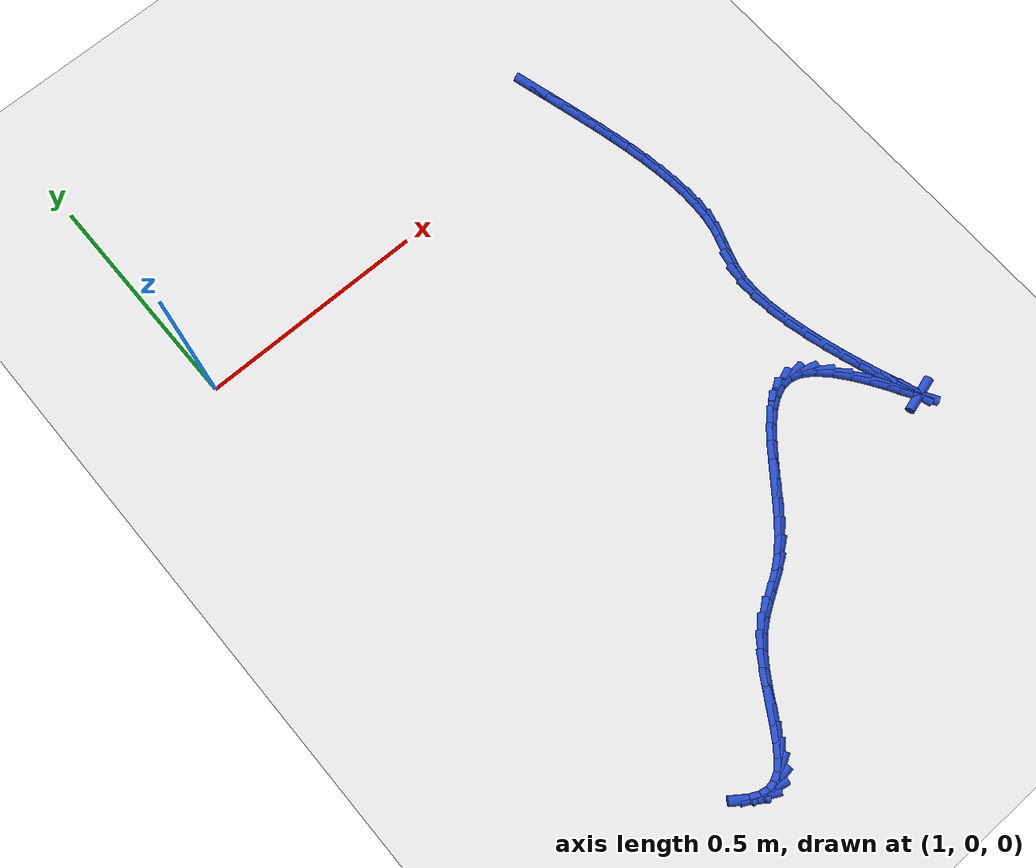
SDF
<sdf version="1.6">
 <world name="default">
  <model name="ground_plane">
   <static>1</static>
   <link name="link">
    <collision name="collision">
     <geometry><plane><normal>0 0 1</normal><size>100 100</size></plane></geometry>
     <surface><friction><ode><mu>100</mu><mu2>50</mu2></ode></friction></surface>
    </collision>
    <visual name="visual">
     <cast_shadows>0</cast_shadows>
     <geometry><plane><normal>0 0 1</normal><size>100 100</size></plane></geometry>
     <material>
      <script><uri>file://media/materials/scripts/gazebo.material</uri><name>Gazebo/WhiteGlow</name></script>
     </material>
    </visual>
   </link>
  </model>
  <model name="line">
   <link name="link_142">
    <pose>1.9295920135745042 0.09901748482487631 0.01 0 1.57 -1.3095981386716005</pose>
    <collision name="collision">
     <geometry><cylinder><radius>0.01</radius><length>0.08</length></cylinder></geometry>
    </collision>
    <visual name="visual">
     <material>
      <script><name>Gazebo/Blue</name><uri>file://media/materials/scripts/gazebo.material</uri></script>
     </material>
     <geometry><cylinder><radius>0.01</radius><length>0.08</length></cylinder></geometry>
    </visual>
   </link>
   <link name="link_143">
    <pose>1.940226286086522 0.05923418407613597 0.01 0 1.57 -1.3081289941124583</pose>
    <collision name="collision">
     <geometry><cylinder><radius>0.01</radius><length>0.08</length></cylinder></geometry>
    </collision>
    <visual name="visual">
     <material>
      <script><name>Gazebo/Blue</name><uri>file://media/materials/scripts/gazebo.material</uri></script>
     </material>
     <geometry><cylinder><radius>0.01</radius><length>0.08</length></cylinder></geometry>
    </visual>
   </link>
   <link name="link_144">
    <pose>1.951056429277409 0.018955411018796844 0.01 0 1.57 -1.3117670248668185</pose>
    <collision name="collision">
     <geometry><cylinder><radius>0.01</radius><length>0.08</length></cylinder></geometry>
    </collision>
    <visual name="visual">
     <material>
      <script><name>Gazebo/Blue</name><uri>file://media/materials/scripts/gazebo.material</uri></script>
     </material>
     <geometry><cylinder><radius>0.01</radius><length>0.08</length></cylinder></geometry>
    </visual>
   </link>
   <link name="link_145">
    <pose>1.961804301551323 -0.021605288677224554 0.01 0 1.57 -1.320492449476029</pose>
    <collision name="collision">
     <geometry><cylinder><radius>0.01</radius><length>0.08</length></cylinder></geometry>
    </collision>
    <visual name="visual">
     <material>
      <script><name>Gazebo/Blue</name><uri>file://media/materials/scripts/gazebo.material</uri></script>
     </material>
     <geometry><cylinder><radius>0.01</radius><length>0.08</length></cylinder></geometry>
    </visual>
   </link>
   <link name="link_146">
    <pose>1.9721917613124198 -0.062234369342007184 0.01 0 1.57 -1.3344862125033923</pose>
    <collision name="collision">
     <geometry><cylinder><radius>0.01</radius><length>0.08</length></cylinder></geometry>
    </collision>
    <visual name="visual">
     <material>
      <script><name>Gazebo/Blue</name><uri>file://media/materials/scripts/gazebo.material</uri></script>
     </material>
     <geometry><cylinder><radius>0.01</radius><length>0.08</length></cylinder></geometry>
    </visual>
   </link>
   <link name="link_147">
    <pose>1.9819406669648572 -0.10271828530563447 0.01 0 1.57 -1.3541351374126227</pose>
    <collision name="collision">
     <geometry><cylinder><radius>0.01</radius><length>0.08</length></cylinder></geometry>
    </collision>
    <visual name="visual">
     <material>
      <script><name>Gazebo/Blue</name><uri>file://media/materials/scripts/gazebo.material</uri></script>
     </material>
     <geometry><cylinder><radius>0.01</radius><length>0.08</length></cylinder></geometry>
    </visual>
   </link>
   <link name="link_148">
    <pose>1.9907728769127908 -0.14284349089818532 0.01 0 1.57 -1.380051458619584</pose>
    <collision name="collision">
     <geometry><cylinder><radius>0.01</radius><length>0.08</length></cylinder></geometry>
    </collision>
    <visual name="visual">
     <material>
      <script><name>Gazebo/Blue</name><uri>file://media/materials/scripts/gazebo.material</uri></script>
     </material>
     <geometry><cylinder><radius>0.01</radius><length>0.08</length></cylinder></geometry>
    </visual>
   </link>
   <link name="link_149">
    <pose>1.9984102495603788 -0.18239644044974335 0.01 0 1.57 -1.4131057579972974</pose>
    <collision name="collision">
     <geometry><cylinder><radius>0.01</radius><length>0.08</length></cylinder></geometry>
    </collision>
    <visual name="visual">
     <material>
      <script><name>Gazebo/Blue</name><uri>file://media/materials/scripts/gazebo.material</uri></script>
     </material>
     <geometry><cylinder><radius>0.01</radius><length>0.08</length></cylinder></geometry>
    </visual>
   </link>
   <link name="link_150">
    <pose>2.004574643311777 -0.22116358829038735 0.01 0 1.57 -1.4544710693049552</pose>
    <collision name="collision">
     <geometry><cylinder><radius>0.01</radius><length>0.08</length></cylinder></geometry>
    </collision>
    <visual name="visual">
     <material>
      <script><name>Gazebo/Blue</name><uri>file://media/materials/scripts/gazebo.material</uri></script>
     </material>
     <geometry><cylinder><radius>0.01</radius><length>0.08</length></cylinder></geometry>
    </visual>
   </link>
   <link name="link_151">
    <pose>2.008987916571143 -0.2589313887501997 0.01 0 1.57 -1.50567128683434</pose>
    <collision name="collision">
     <geometry><cylinder><radius>0.01</radius><length>0.08</length></cylinder></geometry>
    </collision>
    <visual name="visual">
     <material>
      <script><name>Gazebo/Blue</name><uri>file://media/materials/scripts/gazebo.material</uri></script>
     </material>
     <geometry><cylinder><radius>0.01</radius><length>0.08</length></cylinder></geometry>
    </visual>
   </link>
   <link name="link_152">
    <pose>2.011371927742633 -0.2954862961592627 0.01 0 1.57 -1.5686155495168408</pose>
    <collision name="collision">
     <geometry><cylinder><radius>0.01</radius><length>0.08</length></cylinder></geometry>
    </collision>
    <visual name="visual">
     <material>
      <script><name>Gazebo/Blue</name><uri>file://media/materials/scripts/gazebo.material</uri></script>
     </material>
     <geometry><cylinder><radius>0.01</radius><length>0.08</length></cylinder></geometry>
    </visual>
   </link>
   <link name="link_153">
    <pose>2.0114485352304046 -0.33061476484765545 0.01 0 1.57 1.496016609684038</pose>
    <collision name="collision">
     <geometry><cylinder><radius>0.01</radius><length>0.08</length></cylinder></geometry>
    </collision>
    <visual name="visual">
     <material>
      <script><name>Gazebo/Blue</name><uri>file://media/materials/scripts/gazebo.material</uri></script>
     </material>
     <geometry><cylinder><radius>0.01</radius><length>0.08</length></cylinder></geometry>
    </visual>
   </link>
   <link name="link_154">
    <pose>2.0089395974386135 -0.36410324914546105 0.01 0 1.57 1.4025695438643557</pose>
    <collision name="collision">
     <geometry><cylinder><radius>0.01</radius><length>0.08</length></cylinder></geometry>
    </collision>
    <visual name="visual">
     <material>
      <script><name>Gazebo/Blue</name><uri>file://media/materials/scripts/gazebo.material</uri></script>
     </material>
     <geometry><cylinder><radius>0.01</radius><length>0.08</length></cylinder></geometry>
    </visual>
   </link>
   <link name="link_155">
    <pose>2.0035669727714174 -0.39573820338275884 0.01 0 1.57 1.293647670728281</pose>
    <collision name="collision">
     <geometry><cylinder><radius>0.01</radius><length>0.08</length></cylinder></geometry>
    </collision>
    <visual name="visual">
     <material>
      <script><name>Gazebo/Blue</name><uri>file://media/materials/scripts/gazebo.material</uri></script>
     </material>
     <geometry><cylinder><radius>0.01</radius><length>0.08</length></cylinder></geometry>
    </visual>
   </link>
   <link name="link_156">
    <pose>1.9951367212604938 -0.4253731717471019 0.01 0 1.57 1.2268577896596005</pose>
    <collision name="collision">
     <geometry><cylinder><radius>0.01</radius><length>0.08</length></cylinder></geometry>
    </collision>
    <visual name="visual">
     <material>
      <script><name>Gazebo/Blue</name><uri>file://media/materials/scripts/gazebo.material</uri></script>
     </material>
     <geometry><cylinder><radius>0.01</radius><length>0.08</length></cylinder></geometry>
    </visual>
   </link>
   <link name="link_157">
    <pose>1.9848833703449036 -0.4539998673377747 0.01 0 1.57 1.2552804261213353</pose>
    <collision name="collision">
     <geometry><cylinder><radius>0.01</radius><length>0.08</length></cylinder></geometry>
    </collision>
    <visual name="visual">
     <material>
      <script><name>Gazebo/Blue</name><uri>file://media/materials/scripts/gazebo.material</uri></script>
     </material>
     <geometry><cylinder><radius>0.01</radius><length>0.08</length></cylinder></geometry>
    </visual>
   </link>
   <link name="link_158">
    <pose>1.9752342220975956 -0.4835603777603233 0.01 0 1.57 1.3707948132588155</pose>
    <collision name="collision">
     <geometry><cylinder><radius>0.01</radius><length>0.08</length></cylinder></geometry>
    </collision>
    <visual name="visual">
     <material>
      <script><name>Gazebo/Blue</name><uri>file://media/materials/scripts/gazebo.material</uri></script>
     </material>
     <geometry><cylinder><radius>0.01</radius><length>0.08</length></cylinder></geometry>
    </visual>
   </link>
   <link name="link_159">
    <pose>1.9686530898343375 -0.5160258701070609 0.01 0 1.57 1.5249932555579062</pose>
    <collision name="collision">
     <geometry><cylinder><radius>0.01</radius><length>0.08</length></cylinder></geometry>
    </collision>
    <visual name="visual">
     <material>
      <script><name>Gazebo/Blue</name><uri>file://media/materials/scripts/gazebo.material</uri></script>
     </material>
     <geometry><cylinder><radius>0.01</radius><length>0.08</length></cylinder></geometry>
    </visual>
   </link>
   <link name="link_160">
    <pose>1.966969538473541 -0.5527564611182589 0.01 0 1.57 -1.4997960448295549</pose>
    <collision name="collision">
     <geometry><cylinder><radius>0.01</radius><length>0.08</length></cylinder></geometry>
    </collision>
    <visual name="visual">
     <material>
      <script><name>Gazebo/Blue</name><uri>file://media/materials/scripts/gazebo.material</uri></script>
     </material>
     <geometry><cylinder><radius>0.01</radius><length>0.08</length></cylinder></geometry>
    </visual>
   </link>
   <link name="link_161">
    <pose>1.9698324595113297 -0.5930113536526063 0.01 0 1.57 -1.4172730989991489</pose>
    <collision name="collision">
     <geometry><cylinder><radius>0.01</radius><length>0.08</length></cylinder></geometry>
    </collision>
    <visual name="visual">
     <material>
      <script><name>Gazebo/Blue</name><uri>file://media/materials/scripts/gazebo.material</uri></script>
     </material>
     <geometry><cylinder><radius>0.01</radius><length>0.08</length></cylinder></geometry>
    </visual>
   </link>
   <link name="link_162">
    <pose>1.9764224430797726 -0.6355985776299836 0.01 0 1.57 -1.3569182194257339</pose>
    <collision name="collision">
     <geometry><cylinder><radius>0.01</radius><length>0.08</length></cylinder></geometry>
    </collision>
    <visual name="visual">
     <material>
      <script><name>Gazebo/Blue</name><uri>file://media/materials/scripts/gazebo.material</uri></script>
     </material>
     <geometry><cylinder><radius>0.01</radius><length>0.08</length></cylinder></geometry>
    </visual>
   </link>
   <link name="link_163">
    <pose>1.9859200793109406 -0.6793261629702774 0.01 0 1.57 -1.3114993414034966</pose>
    <collision name="collision">
     <geometry><cylinder><radius>0.01</radius><length>0.08</length></cylinder></geometry>
    </collision>
    <visual name="visual">
     <material>
      <script><name>Gazebo/Blue</name><uri>file://media/materials/scripts/gazebo.material</uri></script>
     </material>
     <geometry><cylinder><radius>0.01</radius><length>0.08</length></cylinder></geometry>
    </visual>
   </link>
   <link name="link_164">
    <pose>1.9975059583369035 -0.7230021395933681 0.01 0 1.57 -1.2766392620467053</pose>
    <collision name="collision">
     <geometry><cylinder><radius>0.01</radius><length>0.08</length></cylinder></geometry>
    </collision>
    <visual name="visual">
     <material>
      <script><name>Gazebo/Blue</name><uri>file://media/materials/scripts/gazebo.material</uri></script>
     </material>
     <geometry><cylinder><radius>0.01</radius><length>0.08</length></cylinder></geometry>
    </visual>
   </link>
   <link name="link_165">
    <pose>2.010360670289732 -0.765434537419142 0.01 0 1.57 -1.249679285307967</pose>
    <collision name="collision">
     <geometry><cylinder><radius>0.01</radius><length>0.08</length></cylinder></geometry>
    </collision>
    <visual name="visual">
     <material>
      <script><name>Gazebo/Blue</name><uri>file://media/materials/scripts/gazebo.material</uri></script>
     </material>
     <geometry><cylinder><radius>0.01</radius><length>0.08</length></cylinder></geometry>
    </visual>
   </link>
   <link name="link_166">
    <pose>2.023664805301495 -0.8054313863674798 0.01 0 1.57 -1.2291117367730984</pose>
    <collision name="collision">
     <geometry><cylinder><radius>0.01</radius><length>0.08</length></cylinder></geometry>
    </collision>
    <visual name="visual">
     <material>
      <script><name>Gazebo/Blue</name><uri>file://media/materials/scripts/gazebo.material</uri></script>
     </material>
     <geometry><cylinder><radius>0.01</radius><length>0.08</length></cylinder></geometry>
    </visual>
   </link>
   <link name="link_167">
    <pose>2.0365989535042632 -0.8418007163582673 0.01 0 1.57 -1.2144297943079216</pose>
    <collision name="collision">
     <geometry><cylinder><radius>0.01</radius><length>0.08</length></cylinder></geometry>
    </collision>
    <visual name="visual">
     <material>
      <script><name>Gazebo/Blue</name><uri>file://media/materials/scripts/gazebo.material</uri></script>
     </material>
     <geometry><cylinder><radius>0.01</radius><length>0.08</length></cylinder></geometry>
    </visual>
   </link>
   <link name="link_168">
    <pose>2.048343705030107 -0.8733505573113861 0.01 0 1.57 -1.206576745960196</pose>
    <collision name="collision">
     <geometry><cylinder><radius>0.01</radius><length>0.08</length></cylinder></geometry>
    </collision>
    <visual name="visual">
     <material>
      <script><name>Gazebo/Blue</name><uri>file://media/materials/scripts/gazebo.material</uri></script>
     </material>
     <geometry><cylinder><radius>0.01</radius><length>0.08</length></cylinder></geometry>
    </visual>
   </link>
   <link name="link_169">
    <pose>2.058079650011097 -0.8988889391467214 0.01 0 1.57 -1.21049061397391</pose>
    <collision name="collision">
     <geometry><cylinder><radius>0.01</radius><length>0.08</length></cylinder></geometry>
    </collision>
    <visual name="visual">
     <material>
      <script><name>Gazebo/Blue</name><uri>file://media/materials/scripts/gazebo.material</uri></script>
     </material>
     <geometry><cylinder><radius>0.01</radius><length>0.08</length></cylinder></geometry>
    </visual>
   </link>
   <link name="link_170">
    <pose>2.0649873785793025 -0.9172238917841552 0.01 0 1.57 -1.2538598964867587</pose>
    <collision name="collision">
     <geometry><cylinder><radius>0.01</radius><length>0.08</length></cylinder></geometry>
    </collision>
    <visual name="visual">
     <material>
      <script><name>Gazebo/Blue</name><uri>file://media/materials/scripts/gazebo.material</uri></script>
     </material>
     <geometry><cylinder><radius>0.01</radius><length>0.08</length></cylinder></geometry>
    </visual>
   </link>
   <link name="link_171">
    <pose>2.0682474808667926 -0.9271634451435713 0.01 0 1.57 0.28391751973357804</pose>
    <collision name="collision">
     <geometry><cylinder><radius>0.01</radius><length>0.08</length></cylinder></geometry>
    </collision>
    <visual name="visual">
     <material>
      <script><name>Gazebo/Blue</name><uri>file://media/materials/scripts/gazebo.material</uri></script>
     </material>
     <geometry><cylinder><radius>0.01</radius><length>0.08</length></cylinder></geometry>
    </visual>
   </link>
   <link name="link_172">
    <pose>2.0670405470056394 -0.9275156291448539 0.01 0 1.57 -1.011725884557399</pose>
    <collision name="collision">
     <geometry><cylinder><radius>0.01</radius><length>0.08</length></cylinder></geometry>
    </collision>
    <visual name="visual">
     <material>
      <script><name>Gazebo/Blue</name><uri>file://media/materials/scripts/gazebo.material</uri></script>
     </material>
     <geometry><cylinder><radius>0.01</radius><length>0.08</length></cylinder></geometry>
    </visual>
   </link>
   <link name="link_173">
    <pose>2.0606022530163997 -0.9172251490114257 0.01 0 1.57 -1.0428010320631866</pose>
    <collision name="collision">
     <geometry><cylinder><radius>0.01</radius><length>0.08</length></cylinder></geometry>
    </collision>
    <visual name="visual">
     <material>
      <script><name>Gazebo/Blue</name><uri>file://media/materials/scripts/gazebo.material</uri></script>
     </material>
     <geometry><cylinder><radius>0.01</radius><length>0.08</length></cylinder></geometry>
    </visual>
   </link>
   <link name="link_174">
    <pose>2.0490412583257402 -0.8974026961256163 0.01 0 1.57 -1.0312141872749385</pose>
    <collision name="collision">
     <geometry><cylinder><radius>0.01</radius><length>0.08</length></cylinder></geometry>
    </collision>
    <visual name="visual">
     <material>
      <script><name>Gazebo/Blue</name><uri>file://media/materials/scripts/gazebo.material</uri></script>
     </material>
     <geometry><cylinder><radius>0.01</radius><length>0.08</length></cylinder></geometry>
    </visual>
   </link>
   <link name="link_175">
    <pose>2.0331640784003047 -0.8708904340981146 0.01 0 1.57 -1.0022329331730528</pose>
    <collision name="collision">
     <geometry><cylinder><radius>0.01</radius><length>0.08</length></cylinder></geometry>
    </collision>
    <visual name="visual">
     <material>
      <script><name>Gazebo/Blue</name><uri>file://media/materials/scripts/gazebo.material</uri></script>
     </material>
     <geometry><cylinder><radius>0.01</radius><length>0.08</length></cylinder></geometry>
    </visual>
   </link>
   <link name="link_176">
    <pose>2.013796737758345 -0.840578931051611 0.01 0 1.57 -0.9562679519594884</pose>
    <collision name="collision">
     <geometry><cylinder><radius>0.01</radius><length>0.08</length></cylinder></geometry>
    </collision>
    <visual name="visual">
     <material>
      <script><name>Gazebo/Blue</name><uri>file://media/materials/scripts/gazebo.material</uri></script>
     </material>
     <geometry><cylinder><radius>0.01</radius><length>0.08</length></cylinder></geometry>
    </visual>
   </link>
   <link name="link_177">
    <pose>1.9917652609181142 -0.809358755108798 0.01 0 1.57 -0.8861462367542882</pose>
    <collision name="collision">
     <geometry><cylinder><radius>0.01</radius><length>0.08</length></cylinder></geometry>
    </collision>
    <visual name="visual">
     <material>
      <script><name>Gazebo/Blue</name><uri>file://media/materials/scripts/gazebo.material</uri></script>
     </material>
     <geometry><cylinder><radius>0.01</radius><length>0.08</length></cylinder></geometry>
    </visual>
   </link>
   <link name="link_178">
    <pose>1.9678956723978633 -0.7801204743923658 0.01 0 1.57 -0.774923732781683</pose>
    <collision name="collision">
     <geometry><cylinder><radius>0.01</radius><length>0.08</length></cylinder></geometry>
    </collision>
    <visual name="visual">
     <material>
      <script><name>Gazebo/Blue</name><uri>file://media/materials/scripts/gazebo.material</uri></script>
     </material>
     <geometry><cylinder><radius>0.01</radius><length>0.08</length></cylinder></geometry>
    </visual>
   </link>
   <link name="link_179">
    <pose>1.9430139967158468 -0.7557546570250075 0.01 0 1.57 -0.5850119191014522</pose>
    <collision name="collision">
     <geometry><cylinder><radius>0.01</radius><length>0.08</length></cylinder></geometry>
    </collision>
    <visual name="visual">
     <material>
      <script><name>Gazebo/Blue</name><uri>file://media/materials/scripts/gazebo.material</uri></script>
     </material>
     <geometry><cylinder><radius>0.01</radius><length>0.08</length></cylinder></geometry>
    </visual>
   </link>
   <link name="link_180">
    <pose>1.9179460016195433 -0.7391507358053421 0.01 0 1.57 -0.27319224061942865</pose>
    <collision name="collision">
     <geometry><cylinder><radius>0.01</radius><length>0.08</length></cylinder></geometry>
    </collision>
    <visual name="visual">
     <material>
      <script><name>Gazebo/Blue</name><uri>file://media/materials/scripts/gazebo.material</uri></script>
     </material>
     <geometry><cylinder><radius>0.01</radius><length>0.08</length></cylinder></geometry>
    </visual>
   </link>
   <link name="link_181">
    <pose>1.8933020090942596 -0.732245539939092 0.01 0 1.57 0.08435280568742438</pose>
    <collision name="collision">
     <geometry><cylinder><radius>0.01</radius><length>0.08</length></cylinder></geometry>
    </collision>
    <visual name="visual">
     <material>
      <script><name>Gazebo/Blue</name><uri>file://media/materials/scripts/gazebo.material</uri></script>
     </material>
     <geometry><cylinder><radius>0.01</radius><length>0.08</length></cylinder></geometry>
    </visual>
   </link>
   <link name="link_182">
    <pose>1.8690855903681354 -0.734293121558847 0.01 0 1.57 0.38874329670623053</pose>
    <collision name="collision">
     <geometry><cylinder><radius>0.01</radius><length>0.08</length></cylinder></geometry>
    </collision>
    <visual name="visual">
     <material>
      <script><name>Gazebo/Blue</name><uri>file://media/materials/scripts/gazebo.material</uri></script>
     </material>
     <geometry><cylinder><radius>0.01</radius><length>0.08</length></cylinder></geometry>
    </visual>
   </link>
   <link name="link_183">
    <pose>1.8451942792083467 -0.74407868316527 0.01 0 1.57 0.6033347257023829</pose>
    <collision name="collision">
     <geometry><cylinder><radius>0.01</radius><length>0.08</length></cylinder></geometry>
    </collision>
    <visual name="visual">
     <material>
      <script><name>Gazebo/Blue</name><uri>file://media/materials/scripts/gazebo.material</uri></script>
     </material>
     <geometry><cylinder><radius>0.01</radius><length>0.08</length></cylinder></geometry>
    </visual>
   </link>
   <link name="link_184">
    <pose>1.8215256093820722 -0.7603874272590241 0.01 0 1.57 0.7426623489696753</pose>
    <collision name="collision">
     <geometry><cylinder><radius>0.01</radius><length>0.08</length></cylinder></geometry>
    </collision>
    <visual name="visual">
     <material>
      <script><name>Gazebo/Blue</name><uri>file://media/materials/scripts/gazebo.material</uri></script>
     </material>
     <geometry><cylinder><radius>0.01</radius><length>0.08</length></cylinder></geometry>
    </visual>
   </link>
   <link name="link_185">
    <pose>1.7979771146564867 -0.7820045563407723 0.01 0 1.57 0.8296394672832056</pose>
    <collision name="collision">
     <geometry><cylinder><radius>0.01</radius><length>0.08</length></cylinder></geometry>
    </collision>
    <visual name="visual">
     <material>
      <script><name>Gazebo/Blue</name><uri>file://media/materials/scripts/gazebo.material</uri></script>
     </material>
     <geometry><cylinder><radius>0.01</radius><length>0.08</length></cylinder></geometry>
    </visual>
   </link>
   <link name="link_186">
    <pose>1.7744463287987684 -0.8077152729111762 0.01 0 1.57 0.8803888576347321</pose>
    <collision name="collision">
     <geometry><cylinder><radius>0.01</radius><length>0.08</length></cylinder></geometry>
    </collision>
    <visual name="visual">
     <material>
      <script><name>Gazebo/Blue</name><uri>file://media/materials/scripts/gazebo.material</uri></script>
     </material>
     <geometry><cylinder><radius>0.01</radius><length>0.08</length></cylinder></geometry>
    </visual>
   </link>
   <link name="link_187">
    <pose>1.7508307855760925 -0.8363047794709 0.01 0 1.57 0.9041701600412297</pose>
    <collision name="collision">
     <geometry><cylinder><radius>0.01</radius><length>0.08</length></cylinder></geometry>
    </collision>
    <visual name="visual">
     <material>
      <script><name>Gazebo/Blue</name><uri>file://media/materials/scripts/gazebo.material</uri></script>
     </material>
     <geometry><cylinder><radius>0.01</radius><length>0.08</length></cylinder></geometry>
    </visual>
   </link>
   <link name="link_188">
    <pose>1.7270280187556375 -0.8665582785206051 0.01 0 1.57 0.9054534667680755</pose>
    <collision name="collision">
     <geometry><cylinder><radius>0.01</radius><length>0.08</length></cylinder></geometry>
    </collision>
    <visual name="visual">
     <material>
      <script><name>Gazebo/Blue</name><uri>file://media/materials/scripts/gazebo.material</uri></script>
     </material>
     <geometry><cylinder><radius>0.01</radius><length>0.08</length></cylinder></geometry>
    </visual>
   </link>
   <link name="link_189">
    <pose>1.7029355621045779 -0.8972609725609553 0.01 0 1.57 0.8852543538916833</pose>
    <collision name="collision">
     <geometry><cylinder><radius>0.01</radius><length>0.08</length></cylinder></geometry>
    </collision>
    <visual name="visual">
     <material>
      <script><name>Gazebo/Blue</name><uri>file://media/materials/scripts/gazebo.material</uri></script>
     </material>
     <geometry><cylinder><radius>0.01</radius><length>0.08</length></cylinder></geometry>
    </visual>
   </link>
   <link name="link_190">
    <pose>1.6784509493900928 -0.9271980640926125 0.01 0 1.57 0.8415853838263181</pose>
    <collision name="collision">
     <geometry><cylinder><radius>0.01</radius><length>0.08</length></cylinder></geometry>
    </collision>
    <visual name="visual">
     <material>
      <script><name>Gazebo/Blue</name><uri>file://media/materials/scripts/gazebo.material</uri></script>
     </material>
     <geometry><cylinder><radius>0.01</radius><length>0.08</length></cylinder></geometry>
    </visual>
   </link>
   <link name="link_191">
    <pose>1.6534717143793562 -0.9551547556162405 0.01 0 1.57 0.7692123530983063</pose>
    <collision name="collision">
     <geometry><cylinder><radius>0.01</radius><length>0.08</length></cylinder></geometry>
    </collision>
    <visual name="visual">
     <material>
      <script><name>Gazebo/Blue</name><uri>file://media/materials/scripts/gazebo.material</uri></script>
     </material>
     <geometry><cylinder><radius>0.01</radius><length>0.08</length></cylinder></geometry>
    </visual>
   </link>
   <link name="link_192">
    <pose>1.627895390839548 -0.9799162496325009 0.01 0 1.57 0.6632582627667898</pose>
    <collision name="collision">
     <geometry><cylinder><radius>0.01</radius><length>0.08</length></cylinder></geometry>
    </collision>
    <visual name="visual">
     <material>
      <script><name>Gazebo/Blue</name><uri>file://media/materials/scripts/gazebo.material</uri></script>
     </material>
     <geometry><cylinder><radius>0.01</radius><length>0.08</length></cylinder></geometry>
    </visual>
   </link>
   <link name="link_193">
    <pose>1.6016499587876285 -1.0004228294783697 0.01 0 1.57 0.5709592368079347</pose>
    <collision name="collision">
     <geometry><cylinder><radius>0.01</radius><length>0.08</length></cylinder></geometry>
    </collision>
    <visual name="visual">
     <material>
      <script><name>Gazebo/Blue</name><uri>file://media/materials/scripts/gazebo.material</uri></script>
     </material>
     <geometry><cylinder><radius>0.01</radius><length>0.08</length></cylinder></geometry>
    </visual>
   </link>
   <link name="link_194">
    <pose>1.5750368576056086 -1.0175170288851223 0.01 0 1.57 0.5388396407690582</pose>
    <collision name="collision">
     <geometry><cylinder><radius>0.01</radius><length>0.08</length></cylinder></geometry>
    </collision>
    <visual name="visual">
     <material>
      <script><name>Gazebo/Blue</name><uri>file://media/materials/scripts/gazebo.material</uri></script>
     </material>
     <geometry><cylinder><radius>0.01</radius><length>0.08</length></cylinder></geometry>
    </visual>
   </link>
   <link name="link_195">
    <pose>1.5486080739500852 -1.033317567687451 0.01 0 1.57 0.575062575738814</pose>
    <collision name="collision">
     <geometry><cylinder><radius>0.01</radius><length>0.08</length></cylinder></geometry>
    </collision>
    <visual name="visual">
     <material>
      <script><name>Gazebo/Blue</name><uri>file://media/materials/scripts/gazebo.material</uri></script>
     </material>
     <geometry><cylinder><radius>0.01</radius><length>0.08</length></cylinder></geometry>
    </visual>
   </link>
   <link name="link_196">
    <pose>1.5229202238394923 -1.049966745809922 0.01 0 1.57 0.6779247475882639</pose>
    <collision name="collision">
     <geometry><cylinder><radius>0.01</radius><length>0.08</length></cylinder></geometry>
    </collision>
    <visual name="visual">
     <material>
      <script><name>Gazebo/Blue</name><uri>file://media/materials/scripts/gazebo.material</uri></script>
     </material>
     <geometry><cylinder><radius>0.01</radius><length>0.08</length></cylinder></geometry>
    </visual>
   </link>
   <link name="link_197">
    <pose>1.4985298849636328 -1.0696066952549033 0.01 0 1.57 0.8140804337839334</pose>
    <collision name="collision">
     <geometry><cylinder><radius>0.01</radius><length>0.08</length></cylinder></geometry>
    </collision>
    <visual name="visual">
     <material>
      <script><name>Gazebo/Blue</name><uri>file://media/materials/scripts/gazebo.material</uri></script>
     </material>
     <geometry><cylinder><radius>0.01</radius><length>0.08</length></cylinder></geometry>
    </visual>
   </link>
   <link name="link_198">
    <pose>1.4758272308413105 -1.093650512096488 0.01 0 1.57 0.9139934893051315</pose>
    <collision name="collision">
     <geometry><cylinder><radius>0.01</radius><length>0.08</length></cylinder></geometry>
    </collision>
    <visual name="visual">
     <material>
      <script><name>Gazebo/Blue</name><uri>file://media/materials/scripts/gazebo.material</uri></script>
     </material>
     <geometry><cylinder><radius>0.01</radius><length>0.08</length></cylinder></geometry>
    </visual>
   </link>
   <link name="link_199">
    <pose>1.4546547406014478 -1.1211117799112313 0.01 0 1.57 0.9754640541633267</pose>
    <collision name="collision">
     <geometry><cylinder><radius>0.01</radius><length>0.08</length></cylinder></geometry>
    </collision>
    <visual name="visual">
     <material>
      <script><name>Gazebo/Blue</name><uri>file://media/materials/scripts/gazebo.material</uri></script>
     </material>
     <geometry><cylinder><radius>0.01</radius><length>0.08</length></cylinder></geometry>
    </visual>
   </link>
   <link name="link_200">
    <pose>1.4347423769210903 -1.150511134680393 0.01 0 1.57 1.0059363516531987</pose>
    <collision name="collision">
     <geometry><cylinder><radius>0.01</radius><length>0.08</length></cylinder></geometry>
    </collision>
    <visual name="visual">
     <material>
      <script><name>Gazebo/Blue</name><uri>file://media/materials/scripts/gazebo.material</uri></script>
     </material>
     <geometry><cylinder><radius>0.01</radius><length>0.08</length></cylinder></geometry>
    </visual>
   </link>
   <link name="link_201">
    <pose>1.4158201024772858 -1.1803692123852285 0.01 0 1.57 1.0077501959650998</pose>
    <collision name="collision">
     <geometry><cylinder><radius>0.01</radius><length>0.08</length></cylinder></geometry>
    </collision>
    <visual name="visual">
     <material>
      <script><name>Gazebo/Blue</name><uri>file://media/materials/scripts/gazebo.material</uri></script>
     </material>
     <geometry><cylinder><radius>0.01</radius><length>0.08</length></cylinder></geometry>
    </visual>
   </link>
   <link name="link_202">
    <pose>1.3976178799470786 -1.209206649006997 0.01 0 1.57 0.9777136281943083</pose>
    <collision name="collision">
     <geometry><cylinder><radius>0.01</radius><length>0.08</length></cylinder></geometry>
    </collision>
    <visual name="visual">
     <material>
      <script><name>Gazebo/Blue</name><uri>file://media/materials/scripts/gazebo.material</uri></script>
     </material>
     <geometry><cylinder><radius>0.01</radius><length>0.08</length></cylinder></geometry>
    </visual>
   </link>
   <link name="link_203">
    <pose>1.379865672007517 -1.2355440805269549 0.01 0 1.57 0.9046838108252502</pose>
    <collision name="collision">
     <geometry><cylinder><radius>0.01</radius><length>0.08</length></cylinder></geometry>
    </collision>
    <visual name="visual">
     <material>
      <script><name>Gazebo/Blue</name><uri>file://media/materials/scripts/gazebo.material</uri></script>
     </material>
     <geometry><cylinder><radius>0.01</radius><length>0.08</length></cylinder></geometry>
    </visual>
   </link>
   <link name="link_204">
    <pose>1.3622934413356467 -1.2579021429263608 0.01 0 1.57 0.763326351738378</pose>
    <collision name="collision">
     <geometry><cylinder><radius>0.01</radius><length>0.08</length></cylinder></geometry>
    </collision>
    <visual name="visual">
     <material>
      <script><name>Gazebo/Blue</name><uri>file://media/materials/scripts/gazebo.material</uri></script>
     </material>
     <geometry><cylinder><radius>0.01</radius><length>0.08</length></cylinder></geometry>
    </visual>
   </link>
   <link name="link_205">
    <pose>1.3446311506085127 -1.274801472186472 0.01 0 1.57 0.5064590345798171</pose>
    <collision name="collision">
     <geometry><cylinder><radius>0.01</radius><length>0.08</length></cylinder></geometry>
    </collision>
    <visual name="visual">
     <material>
      <script><name>Gazebo/Blue</name><uri>file://media/materials/scripts/gazebo.material</uri></script>
     </material>
     <geometry><cylinder><radius>0.01</radius><length>0.08</length></cylinder></geometry>
    </visual>
   </link>
   <link name="link_206">
    <pose>1.3266116922549067 -1.2847972083859025 0.01 0 1.57 0.14289862814588622</pose>
    <collision name="collision">
     <geometry><cylinder><radius>0.01</radius><length>0.08</length></cylinder></geometry>
    </collision>
    <visual name="visual">
     <material>
      <script><name>Gazebo/Blue</name><uri>file://media/materials/scripts/gazebo.material</uri></script>
     </material>
     <geometry><cylinder><radius>0.01</radius><length>0.08</length></cylinder></geometry>
    </visual>
   </link>
   <link name="link_207">
    <pose>1.3080547939081473 -1.287467161990881 0.01 0 1.57 -0.2011063282176399</pose>
    <collision name="collision">
     <geometry><cylinder><radius>0.01</radius><length>0.08</length></cylinder></geometry>
    </collision>
    <visual name="visual">
     <material>
      <script><name>Gazebo/Blue</name><uri>file://media/materials/scripts/gazebo.material</uri></script>
     </material>
     <geometry><cylinder><radius>0.01</radius><length>0.08</length></cylinder></geometry>
    </visual>
   </link>
   <link name="link_208">
    <pose>1.2888794339247598 -1.2835580331606988 0.01 0 1.57 -0.4532421780298012</pose>
    <collision name="collision">
     <geometry><cylinder><radius>0.01</radius><length>0.08</length></cylinder></geometry>
    </collision>
    <visual name="visual">
     <material>
      <script><name>Gazebo/Blue</name><uri>file://media/materials/scripts/gazebo.material</uri></script>
     </material>
     <geometry><cylinder><radius>0.01</radius><length>0.08</length></cylinder></geometry>
    </visual>
   </link>
   <link name="link_209">
    <pose>1.2690100174263628 -1.2738804338286005 0.01 0 1.57 -0.6168167793722732</pose>
    <collision name="collision">
     <geometry><cylinder><radius>0.01</radius><length>0.08</length></cylinder></geometry>
    </collision>
    <visual name="visual">
     <material>
      <script><name>Gazebo/Blue</name><uri>file://media/materials/scripts/gazebo.material</uri></script>
     </material>
     <geometry><cylinder><radius>0.01</radius><length>0.08</length></cylinder></geometry>
    </visual>
   </link>
  </model>
 </world>
</sdf>
